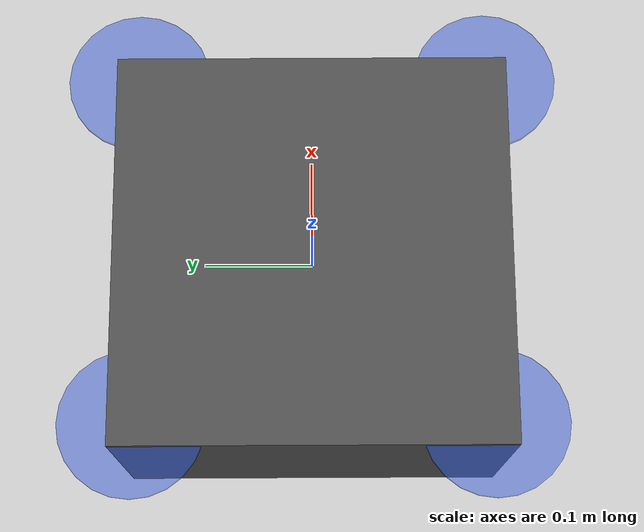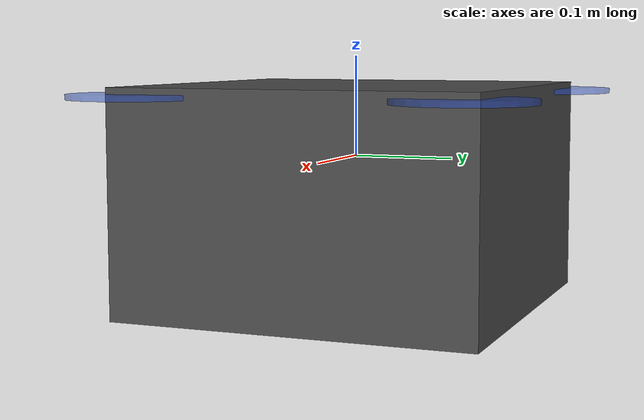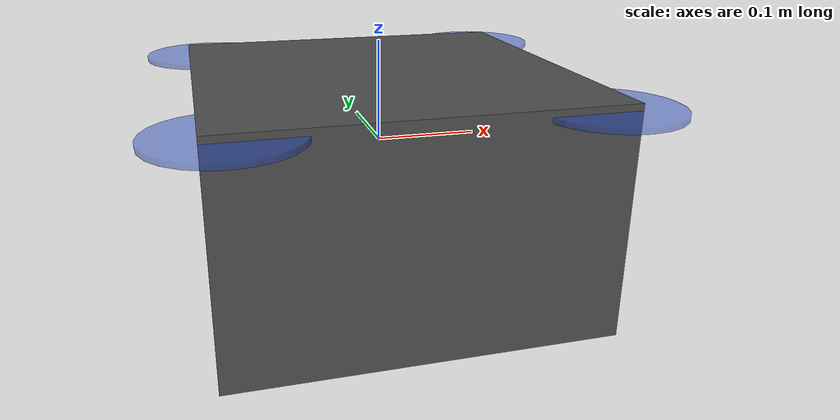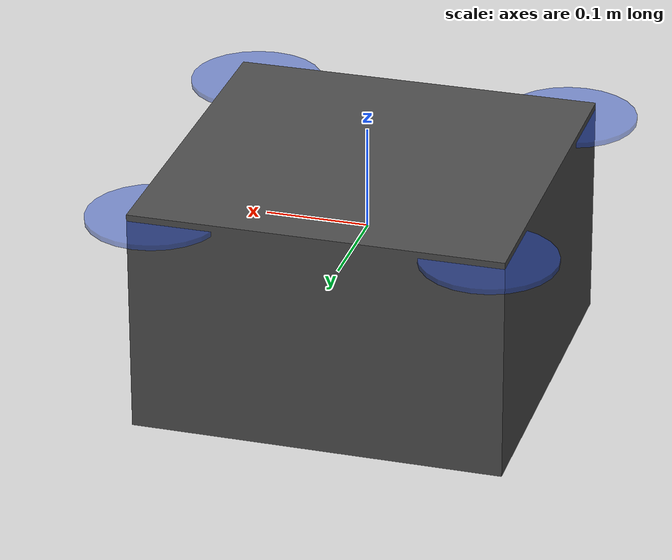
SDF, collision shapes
<sdf version='1.5'>
  <model name='quad_f450_thermal'>
    <link name='base_link'>
      <pose>0 0 0 0 0 0</pose> <!-- This pose is the visual offset of the vehicle + the reference frame -->
      <inertial>
        <pose>0.00027849 -0.00083549 0.015434 0 0 0</pose> <!-- This pose is the center of mass of the vehicle-->
        <mass>1.70</mass>
        <inertia>
          <ixx>0.014959</ixx>
          <ixy>0</ixy>
          <ixz>0</ixz>
          <iyy>0.022005</iyy>
          <iyz>0</iyz>
          <izz>0.028033</izz>
        </inertia>
      </inertial>
      <collision name='base_link_collision'>
        <pose>0 0 -0.0385 0 0 0</pose> <!-- The z Axis has an offset to create a centered box for collisions-->
        <geometry>
          <box>
            <size>0.3585 0.3585 0.22</size>
          </box>
        </geometry>
        <surface>
          <contact>
            <ode>
              <min_depth>0.001</min_depth>
              <max_vel>0</max_vel>
            </ode>
          </contact>
          <friction>
            <ode/>
          </friction>
        </surface>
      </collision>
      <visual name='base_link_visual'>
        <pose>0 0 0 0 0 0</pose>
        <geometry>
          <mesh>
            <scale>1 1 1</scale>
            <uri>model://quad_f450_thermal/meshes/base_link.STL</uri>
          </mesh>
        </geometry>
        <material>
          <script>
            <name>Gazebo/DarkGrey</name>
            <uri>file://media/materials/scripts/gazebo.material</uri>
          </script>
        </material>
      </visual>
      <gravity>1</gravity>
      <velocity_decay/>
   </link>

   <!-- IMU link-->
   <link name='/imu_link'>
      <pose>0 0 0 0 0 0</pose>
      <inertial>
        <pose>0 0 0 0 0 0</pose>
        <mass>0.015</mass>
        <inertia>
          <ixx>1e-05</ixx>
          <ixy>0</ixy>
          <ixz>0</ixz>
          <iyy>1e-05</iyy>
          <iyz>0</iyz>
          <izz>1e-05</izz>
        </inertia>
      </inertial>
    </link>
    <joint name='/imu_joint' type='revolute'>
      <child>/imu_link</child>
      <parent>base_link</parent>
      <axis>
        <xyz>1 0 0</xyz>
        <limit>
          <lower>0</lower>
          <upper>0</upper>
          <effort>0</effort>
          <velocity>0</velocity>
        </limit>
        <dynamics>
          <spring_reference>0</spring_reference>
          <spring_stiffness>0</spring_stiffness>
        </dynamics>
        <use_parent_model_frame>1</use_parent_model_frame>
      </axis>
    </joint>

   <!-- Rotor 1-->
   <link name='rotor_0'>
    <pose>0.15891 0.15872 0.062676 0 0 0.7854</pose>
      <inertial>
        <pose>0 0 0 0 0 0</pose>
        <mass>0.01</mass>
        <inertia>
          <ixx>8.4464e-07</ixx>
          <ixy>-7.2191e-07</ixy>
          <ixz>5.3515e-13</ixz>
          <iyy>6.4014e-07</iyy>
          <iyz>5.5137e-13</iyz>
          <izz>1.4805e-06</izz>
        </inertia>
      </inertial>
      <collision name='rotor_0_collision'>
        <pose>0 0 0 0 0 0</pose>
        <geometry>
          <cylinder>
            <length>0.005</length>
            <radius>0.065</radius>
          </cylinder>
        </geometry>
        <surface>
          <contact>
            <ode/>
          </contact>
          <friction>
            <ode/>
          </friction>
        </surface>
      </collision>
      <visual name='rotor_0_visual'>
        <pose>0 0 0 0 0 0</pose>
        <geometry>
          <mesh>
            <scale>1 1 1</scale>
            <uri>model://quad_f450_thermal/meshes/propeller_0.STL</uri>
          </mesh>
        </geometry>
        <material>
          <script>
            <name>Gazebo/BlueTransparent</name>
            <uri>file://media/materials/scripts/gazebo.material</uri>
          </script>
        </material>
      </visual>
      <gravity>1</gravity>
      <velocity_decay/>
      <self_collide>0</self_collide>
    </link>
    <joint name='rotor_0_joint' type='revolute'>
      <child>rotor_0</child>
      <parent>base_link</parent>
      <pose>0 0 0 0 0 0</pose>
      <axis>
        <xyz>0 0 -1</xyz>
        <limit>
          <lower>-1e+16</lower>
          <upper>1e+16</upper>
        </limit>
        <dynamics>
          <spring_reference>0</spring_reference>
          <spring_stiffness>0</spring_stiffness>
        </dynamics>
        <use_parent_model_frame>1</use_parent_model_frame>
      </axis>
    </joint>

    <!-- Rotor 2-->
    <link name='rotor_1'>
    <pose>0.1589 -0.15909 0.062676 0 0 -0.7854</pose>
      <inertial>
        <pose>0 0 0 0 0 0</pose>
        <mass>0.01</mass>
        <inertia>
          <ixx>8.5496e-07</ixx>
          <ixy>7.1953e-07</ixy>
          <ixz>-4.1012e-13</ixz>
          <iyy>6.2836e-07</iyy>
          <iyz>5.491e-13</iyz>
          <izz>1.479e-06</izz>
        </inertia>
      </inertial>
      <collision name='rotor_1_collision'>
        <pose>0 0 0 0 0 0</pose>
        <geometry>
          <cylinder>
            <length>0.005</length>
            <radius>0.065</radius>
          </cylinder>
        </geometry>
        <surface>
          <contact>
            <ode/>
          </contact>
          <friction>
            <ode/>
          </friction>
        </surface>
      </collision>
      <visual name='rotor_1_visual'>
        <pose>0 0 0 0 0 0</pose>
        <geometry>
          <mesh>
            <scale>1 1 1</scale>
            <uri>model://quad_f450_thermal/meshes/propeller_1.STL</uri>
          </mesh>
        </geometry>
        <material>
          <script>
            <name>Gazebo/BlueTransparent</name>
            <uri>file://media/materials/scripts/gazebo.material</uri>
          </script>
        </material>
      </visual>
      <gravity>1</gravity>
      <velocity_decay/>
      <self_collide>0</self_collide>
    </link>
    <joint name='rotor_1_joint' type='revolute'>
      <child>rotor_1</child>
      <parent>base_link</parent>
      <pose>0 0 0 0 0 0</pose>
      <axis>
        <xyz>0 0 -1</xyz>
        <limit>
          <lower>-1e+16</lower>
          <upper>1e+16</upper>
        </limit>
        <dynamics>
          <spring_reference>0</spring_reference>
          <spring_stiffness>0</spring_stiffness>
        </dynamics>
        <use_parent_model_frame>1</use_parent_model_frame>
      </axis>
    </joint>

    <!-- Rotor 3-->
    <link name='rotor_2'>
    <pose>-0.15891 -0.15908 0.062676 0 0 0.7854</pose>
      <inertial>
        <pose>0 0 0 0 0 0</pose>
        <mass>0.01</mass>
        <inertia>
          <ixx>8.4464e-07</ixx>
          <ixy>-7.2191e-07</ixy>
          <ixz>4.5077e-13</ixz>
          <iyy>6.4014e-07</iyy>
          <iyz>4.5674e-13</iyz>
          <izz>1.4805e-06</izz>
        </inertia>
      </inertial>
      <collision name='rotor_2_collision'>
        <pose>0 0 0 0 0 0</pose>
        <geometry>
          <cylinder>
            <length>0.005</length>
            <radius>0.065</radius>
          </cylinder>
        </geometry>
        <surface>
          <contact>
            <ode/>
          </contact>
          <friction>
            <ode/>
          </friction>
        </surface>
      </collision>
      <visual name='rotor_2_visual'>
        <pose>0 0 0 0 0 0</pose>
        <geometry>
          <mesh>
            <scale>1 1 1</scale>
            <uri>model://quad_f450_thermal/meshes/propeller_0.STL</uri>
          </mesh>
        </geometry>
        <material>
          <script>
            <name>Gazebo/BlueTransparent</name>
            <uri>file://media/materials/scripts/gazebo.material</uri>
          </script>
        </material>
      </visual>
      <gravity>1</gravity>
      <velocity_decay/>
      <self_collide>0</self_collide>
    </link>
    <joint name='rotor_2_joint' type='revolute'>
      <child>rotor_2</child>
      <parent>base_link</parent>
      <pose>0 0 0 0 0 0</pose>
      <axis>
        <xyz>0 0 -1</xyz>
        <limit>
          <lower>-1e+16</lower>
          <upper>1e+16</upper>
        </limit>
        <dynamics>
          <spring_reference>0</spring_reference>
          <spring_stiffness>0</spring_stiffness>
        </dynamics>
        <use_parent_model_frame>1</use_parent_model_frame>
      </axis>
    </joint>

    <!-- Rotor 4-->
    <link name='rotor_3'>
    <pose>-0.1589 0.15873 0.062676 0 0 -0.7854</pose>
      <inertial>
        <pose>0 0 0 0 0 0</pose>
        <mass>0.01</mass>
        <inertia>
          <ixx>8.5496e-07</ixx>
          <ixy>7.1953e-07</ixy>
          <ixz>-4.184e-13</ixz>
          <iyy>6.2836e-07</iyy>
          <iyz>5.3609e-13</iyz>
          <izz>1.479e-06</izz>
        </inertia>
      </inertial>
      <collision name='rotor_3_collision'>
        <pose>0 0 0 0 0 0</pose>
        <geometry>
          <cylinder>
            <length>0.005</length>
            <radius>0.065</radius>
          </cylinder>
        </geometry>
        <surface>
          <contact>
            <ode/>
          </contact>
          <friction>
            <ode/>
          </friction>
        </surface>
      </collision>
      <visual name='rotor_3_visual'>
        <pose>0 0 0 0 0 0</pose>
        <geometry>
          <mesh>
            <scale>1 1 1</scale>
            <uri>model://quad_f450_thermal/meshes/propeller_1.STL</uri>
          </mesh>
        </geometry>
        <material>
          <script>
            <name>Gazebo/BlueTransparent</name>
            <uri>file://media/materials/scripts/gazebo.material</uri>
          </script>
        </material>
      </visual>
      <gravity>1</gravity>
      <velocity_decay/>
      <self_collide>0</self_collide>
    </link>
    <joint name='rotor_3_joint' type='revolute'>
      <child>rotor_3</child>
      <parent>base_link</parent>
      <pose>0 0 0 0 0 0</pose>
      <axis>
        <xyz>0 0 -1</xyz>
        <limit>
          <lower>-1e+16</lower>
          <upper>1e+16</upper>
        </limit>
        <dynamics>
          <spring_reference>0</spring_reference>
          <spring_stiffness>0</spring_stiffness>
        </dynamics>
        <use_parent_model_frame>1</use_parent_model_frame>
      </axis>
    </joint>

    <!-- Monocular cam link-->
    <link name="cam_monocular">
    <pose>0.041421 -0.046913 -0.067515 0.0068235 0.7854 0</pose>
      <inertial>
        <pose>0 0 0 0 0 0</pose>
        <mass>0.050075</mass>
        <inertia>
          <ixx>3.2061e-05</ixx>
          <ixy>4.2601e-10</ixy>
          <ixz>-1.169e-08</ixz>
          <iyy>5.1652e-06</iyy>
          <iyz>-5.2181e-10</iyz>
          <izz>3.0815e-05</izz>
        </inertia>
      </inertial>
      <collision name='camera_collision'>
        <pose>0 0 0 1.57 0 0</pose>
        <geometry>
          <box>
            <size>0.023813 0.027686 0.092682</size>
          </box>
        </geometry>
        <surface>
          <friction>
            <ode>
              <mu>1</mu>
              <mu2>1</mu2>
            </ode>
          </friction>
          <contact>
            <ode>
              <kp>1e+8</kp>
              <kd>1</kd>
              <max_vel>0.01</max_vel>
              <min_depth>0.001</min_depth>
            </ode>
          </contact>
        </surface>
      </collision>
      <visual name='camera_visual'>
        <pose>0 0 0 0 0 0</pose>
        <geometry>
          <mesh>
            <scale>1 1 1</scale>
            <uri>model://quad_f450_thermal/meshes/cam_link.STL</uri>
          </mesh>
        </geometry>
        <material>
          <script>
            <name>Gazebo/White</name>
            <uri>file://media/materials/scripts/gazebo.material</uri>
          </script>
        </material>
      </visual>
	  <gravity>1</gravity>
	  <velocity_decay/>
      <self_collide>0</self_collide>
      <sensor name="camera_imu" type="imu">
        <always_on>1</always_on>
      </sensor>
      <sensor name="camera" type="camera">
        <pose>0 0 0 0 0 0</pose>
        <camera>
          <horizontal_fov>2.0</horizontal_fov>
          <image>
            <format>R8G8B8</format>
            <width>640</width>
            <height>480</height>
          </image>
          <clip>
            <near>0.05</near>
            <far>15000</far>
          </clip>
        </camera>
        <always_on>1</always_on>
        <update_rate>10</update_rate>
        <visualize>true</visualize>

        <plugin filename="libgazebo_ros_camera.so" name="camera_en_ros">
            <robotNamespace>quad_f450_thermal</robotNamespace>
            <cameraName>monocular_camera</cameraName>
            <imageTopicName>raw_image</imageTopicName>
            <cameraInfoTopicName>info_image</cameraInfoTopicName>
            <FrameName>cameraImage</FrameName>
            <Cy>0</Cy>
            <Cx>0</Cx>
            <updateRate>30.0</updateRate>
        </plugin>

        <plugin name="GstCameraPlugin" filename="libgazebo_gst_camera_plugin.so">
            <robotNamespace></robotNamespace>
            <udpPort>5600</udpPort>
        </plugin>

        <plugin name="GeotaggedImagesPlugin" filename="libgazebo_geotagged_images_plugin.so">
            <robotNamespace>quad_f450_thermal</robotNamespace>
            <interval>1</interval>
            <width>3840</width>
            <height>2160</height>
            <maximum_zoom>8.0</maximum_zoom>
        </plugin>

      </sensor>
    </link>
    <joint name='monocular_camera_joint' type='fixed'>
      <child>cam_monocular</child>
      <parent>base_link</parent>
      <pose>0 0 0 0 0 0</pose>
      <axis>
        <xyz>-1 0 0</xyz>
      </axis>
    </joint>

    <!-- Thermal cam link-->
    <link name="cam_thermic">
    <pose>0.042355 0.046075 -0.066582 0.020785 0.7854 0</pose>
      <inertial>
        <pose>0 0 0 0 0 0</pose>
        <mass>0.050075</mass>
        <inertia>
          <ixx>3.2061e-05</ixx>
          <ixy>4.2601e-10</ixy>
          <ixz>-1.169e-08</ixz>
          <iyy>5.1652e-06</iyy>
          <iyz>-5.2183e-10</iyz>
          <izz>3.0815e-05</izz>
        </inertia>
      </inertial>
      <collision name='camera_collision'>
        <pose>0 0 0 1.57 0 0</pose>
        <geometry>
          <box>
            <size>0.023813 0.027686 0.092682</size>
          </box>
        </geometry>
        <surface>
          <friction>
            <ode>
              <mu>1</mu>
              <mu2>1</mu2>
            </ode>
          </friction>
          <contact>
            <ode>
              <kp>1e+8</kp>
              <kd>1</kd>
              <max_vel>0.01</max_vel>
              <min_depth>0.001</min_depth>
            </ode>
          </contact>
        </surface>
      </collision>
      <visual name='camera_visual'>
        <pose>0 0 0 0 0 0</pose>
        <geometry>
          <mesh>
            <scale>1 1 1</scale>
            <uri>model://quad_f450_thermal/meshes/cam_link.STL</uri>
          </mesh>
        </geometry>
        <material>
          <script>
            <name>Gazebo/White</name>
            <uri>file://media/materials/scripts/gazebo.material</uri>
          </script>
        </material>
      </visual>
	  <gravity>1</gravity>
	  <velocity_decay/>
      <self_collide>0</self_collide>
      <sensor name="camera_imu" type="imu">
        <always_on>1</always_on>
      </sensor>
      <sensor name="thermal_camera_sensor" type="camera">
        <pose>0 0 0 0 0 0</pose>
        <camera>
          <horizontal_fov>2.0</horizontal_fov>
          <image>
            <format>R8G8B8</format>
            <width>640</width>
            <height>480</height>
          </image>
          <clip>
            <near>0.05</near>
            <far>15000</far>
          </clip>
        </camera>
        <always_on>1</always_on>
        <update_rate>30</update_rate>
        <visualize>true</visualize>

        <plugin filename="libgazebo_ros_thermal_camera.so" name="thermal_camera_controller">
            <robotNamespace>quad_f450_thermal</robotNamespace>
            <cameraName>thermal_camera</cameraName>
            <imageTopicName>raw_image</imageTopicName>
            <cameraInfoTopicName>info_image</cameraInfoTopicName>
            <FrameName>cameraImage</FrameName>
            <Cy>0</Cy>
            <Cx>0</Cx>
            <updateRate>30.0</updateRate>
        </plugin>

      </sensor>
    </link>
    <joint name='thermal_camera_joint' type='fixed'>
      <child>cam_thermic</child>
      <parent>base_link</parent>
      <pose>0 0 0 0 0 0</pose>
      <axis>
        <xyz>-1 0 0</xyz>
      </axis>
    </joint>

    <!-- Rosbag Plugin-->
    <plugin name='rosbag' filename='libgazebo_multirotor_base_plugin.so'>
      <robotNamespace/>
      <linkName>base_link</linkName>
      <rotorVelocitySlowdownSim>10</rotorVelocitySlowdownSim>
    </plugin>

    <!-- Motor 2 Plugin-->
    <plugin name='front_right_motor_model' filename='libgazebo_motor_model.so'>
      <robotNamespace/>
      <jointName>rotor_1_joint</jointName>
      <linkName>rotor_1</linkName>
      <turningDirection>ccw</turningDirection>
      <timeConstantUp>0.0125</timeConstantUp>
      <timeConstantDown>0.025</timeConstantDown>
      <maxRotVelocity>900</maxRotVelocity>
      <motorConstant>12.8627e-06</motorConstant>
      <momentConstant>0.017</momentConstant>
      <commandSubTopic>/gazebo/command/motor_speed</commandSubTopic>
      <motorNumber>0</motorNumber>
      <rotorDragCoefficient>0.000806428</rotorDragCoefficient>
      <rollingMomentCoefficient>1e-06</rollingMomentCoefficient>
      <motorSpeedPubTopic>/motor_speed/0</motorSpeedPubTopic>
      <rotorVelocitySlowdownSim>10</rotorVelocitySlowdownSim>
      <joint_control_pid>
        <p>0.1</p>
        <i>0</i>
        <d>0</d>
        <iMax>0</iMax>
        <iMin>0</iMin>
        <cmdMax>3</cmdMax>
        <cmdMin>-3</cmdMin>
      </joint_control_pid>
    </plugin>

    <!-- Motor 4 Plugin-->
    <plugin name='back_left_motor_model' filename='libgazebo_motor_model.so'>
      <robotNamespace/>
      <jointName>rotor_3_joint</jointName>
      <linkName>rotor_3</linkName>
      <turningDirection>ccw</turningDirection>
      <timeConstantUp>0.0125</timeConstantUp>
      <timeConstantDown>0.025</timeConstantDown>
      <maxRotVelocity>900</maxRotVelocity>
      <motorConstant>12.8627e-06</motorConstant>
      <momentConstant>0.017</momentConstant>
      <commandSubTopic>/gazebo/command/motor_speed</commandSubTopic>
      <motorNumber>1</motorNumber>
      <rotorDragCoefficient>0.000806428</rotorDragCoefficient>
      <rollingMomentCoefficient>1e-06</rollingMomentCoefficient>
      <motorSpeedPubTopic>/motor_speed/1</motorSpeedPubTopic>
      <rotorVelocitySlowdownSim>10</rotorVelocitySlowdownSim>
      <joint_control_pid>
        <p>0.1</p>
        <i>0</i>
        <d>0</d>
        <iMax>0</iMax>
        <iMin>0</iMin>
        <cmdMax>3</cmdMax>
        <cmdMin>-3</cmdMin>
      </joint_control_pid>
    </plugin>

    <!-- Motor 1 Plugin-->
    <plugin name='front_left_motor_model' filename='libgazebo_motor_model.so'>
      <robotNamespace/>
      <jointName>rotor_0_joint</jointName>
      <linkName>rotor_0</linkName>
      <turningDirection>cw</turningDirection>
      <timeConstantUp>0.0125</timeConstantUp>
      <timeConstantDown>0.025</timeConstantDown>
      <maxRotVelocity>900</maxRotVelocity>
      <motorConstant>12.8627e-06</motorConstant>
      <momentConstant>0.017</momentConstant>
      <commandSubTopic>/gazebo/command/motor_speed</commandSubTopic>
      <motorNumber>2</motorNumber>
      <rotorDragCoefficient>0.000806428</rotorDragCoefficient>
      <rollingMomentCoefficient>1e-06</rollingMomentCoefficient>
      <motorSpeedPubTopic>/motor_speed/2</motorSpeedPubTopic>
      <rotorVelocitySlowdownSim>10</rotorVelocitySlowdownSim>
      <joint_control_pid>
        <p>0.1</p>
        <i>0</i>
        <d>0</d>
        <iMax>0</iMax>
        <iMin>0</iMin>
        <cmdMax>3</cmdMax>
        <cmdMin>-3</cmdMin>
      </joint_control_pid>
    </plugin>

    <!-- Motor 3 Plugin-->
    <plugin name='back_right_motor_model' filename='libgazebo_motor_model.so'>
      <robotNamespace/>
      <jointName>rotor_2_joint</jointName>
      <linkName>rotor_2</linkName>
      <turningDirection>cw</turningDirection>
      <timeConstantUp>0.0125</timeConstantUp>
      <timeConstantDown>0.025</timeConstantDown>
      <maxRotVelocity>900</maxRotVelocity>
      <motorConstant>12.8627e-06</motorConstant>
      <momentConstant>0.017</momentConstant>
      <commandSubTopic>/gazebo/command/motor_speed</commandSubTopic>
      <motorNumber>3</motorNumber>
      <rotorDragCoefficient>0.000806428</rotorDragCoefficient>
      <rollingMomentCoefficient>1e-06</rollingMomentCoefficient>
      <motorSpeedPubTopic>/motor_speed/3</motorSpeedPubTopic>
      <rotorVelocitySlowdownSim>10</rotorVelocitySlowdownSim>
      <joint_control_pid>
        <p>0.1</p>
        <i>0</i>
        <d>0</d>
        <iMax>0</iMax>
        <iMin>0</iMin>
        <cmdMax>3</cmdMax>
        <cmdMin>-3</cmdMin>
      </joint_control_pid>
    </plugin>

    <!-- GPS Plugin-->
    <plugin name='gps_plugin' filename='libgazebo_gps_plugin.so'>
      <robotNamespace/>
      <gpsNoise>true</gpsNoise>
    </plugin>

    <!-- Magnetometer Plugin-->
    <plugin name='magnetometer_plugin' filename='libgazebo_magnetometer_plugin.so'>
      <robotNamespace/>
      <pubRate>20</pubRate>
      <noiseDensity>0.0004</noiseDensity>
      <randomWalk>6.4e-06</randomWalk>
      <biasCorrelationTime>600</biasCorrelationTime>
      <magTopic>/mag</magTopic>
    </plugin>

    <!-- Barometer Plugin-->
    <plugin name='barometer_plugin' filename='libgazebo_barometer_plugin.so'>
      <robotNamespace/>
      <pubRate>10</pubRate>
      <baroTopic>/baro</baroTopic>
    </plugin>

    <!-- Mavlink Plugin-->
    <plugin name='mavlink_interface' filename='libgazebo_mavlink_interface.so'>
      <robotNamespace/>
      <imuSubTopic>/imu</imuSubTopic>
      <gpsSubTopic>/gps</gpsSubTopic>
      <magSubTopic>/mag</magSubTopic>
      <baroSubTopic>/baro</baroSubTopic>
      <mavlink_addr>INADDR_ANY</mavlink_addr>
      <mavlink_udp_port>14560</mavlink_udp_port>
      <mavlink_tcp_port>4560</mavlink_tcp_port>
      <serialEnabled>0</serialEnabled>
      <serialDevice>/dev/ttyACM0</serialDevice>
      <baudRate>921600</baudRate>
      <qgc_addr>INADDR_ANY</qgc_addr>
      <qgc_udp_port>14550</qgc_udp_port>
      <sdk_addr>INADDR_ANY</sdk_addr>
      <sdk_udp_port>14540</sdk_udp_port>
      <hil_mode>0</hil_mode>
      <hil_state_level>0</hil_state_level>
      <enable_lockstep>1</enable_lockstep>
      <use_tcp>1</use_tcp>
      <vehicle_is_tailsitter>0</vehicle_is_tailsitter>
      <send_vision_estimation>1</send_vision_estimation>
      <send_odometry>0</send_odometry>
      <motorSpeedCommandPubTopic>/gazebo/command/motor_speed</motorSpeedCommandPubTopic>
      <control_channels>
        <channel name='rotor1'>
          <input_index>0</input_index>
          <input_offset>0</input_offset>
          <input_scaling>900</input_scaling>
          <zero_position_disarmed>0</zero_position_disarmed>
          <zero_position_armed>100</zero_position_armed>
          <joint_control_type>velocity</joint_control_type>
          <joint_name>rotor_1_joint</joint_name>
        </channel>
        <channel name='rotor2'>
          <input_index>1</input_index>
          <input_offset>0</input_offset>
          <input_scaling>900</input_scaling>
          <zero_position_disarmed>0</zero_position_disarmed>
          <zero_position_armed>100</zero_position_armed>
          <joint_control_type>velocity</joint_control_type>
          <joint_name>rotor_3_joint</joint_name>
        </channel>
        <channel name='rotor3'>
          <input_index>2</input_index>
          <input_offset>0</input_offset>
          <input_scaling>900</input_scaling>
          <zero_position_disarmed>0</zero_position_disarmed>
          <zero_position_armed>100</zero_position_armed>
          <joint_control_type>velocity</joint_control_type>
          <joint_name>rotor_0_joint</joint_name>
        </channel>
        <channel name='rotor4'>
          <input_index>3</input_index>
          <input_offset>0</input_offset>
          <input_scaling>900</input_scaling>
          <zero_position_disarmed>0</zero_position_disarmed>
          <zero_position_armed>100</zero_position_armed>
          <joint_control_type>velocity</joint_control_type>
          <joint_name>rotor_2_joint</joint_name>
        </channel>
      </control_channels>
    </plugin>
    <static>0</static>

    <!-- IMU plugin-->
    <plugin name='rotors_gazebo_imu_plugin' filename='libgazebo_imu_plugin.so'>
      <robotNamespace/>
      <linkName>/imu_link</linkName>
      <imuTopic>/imu</imuTopic>
      <gyroscopeNoiseDensity>0.0003394</gyroscopeNoiseDensity>
      <gyroscopeRandomWalk>3.8785e-05</gyroscopeRandomWalk>
      <gyroscopeBiasCorrelationTime>1000.0</gyroscopeBiasCorrelationTime>
      <gyroscopeTurnOnBiasSigma>0.0087</gyroscopeTurnOnBiasSigma>
      <accelerometerNoiseDensity>0.004</accelerometerNoiseDensity>
      <accelerometerRandomWalk>0.006</accelerometerRandomWalk>
      <accelerometerBiasCorrelationTime>300.0</accelerometerBiasCorrelationTime>
      <accelerometerTurnOnBiasSigma>0.196</accelerometerTurnOnBiasSigma>
    </plugin>

  </model>
</sdf>
